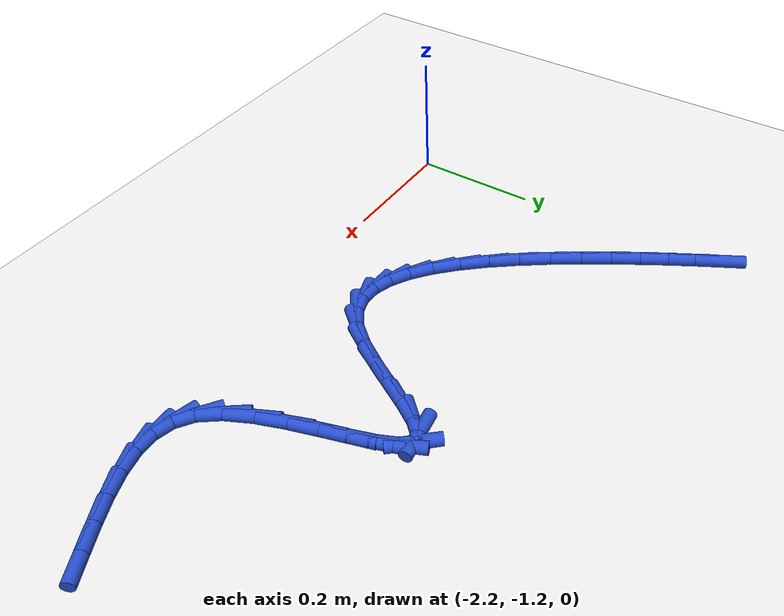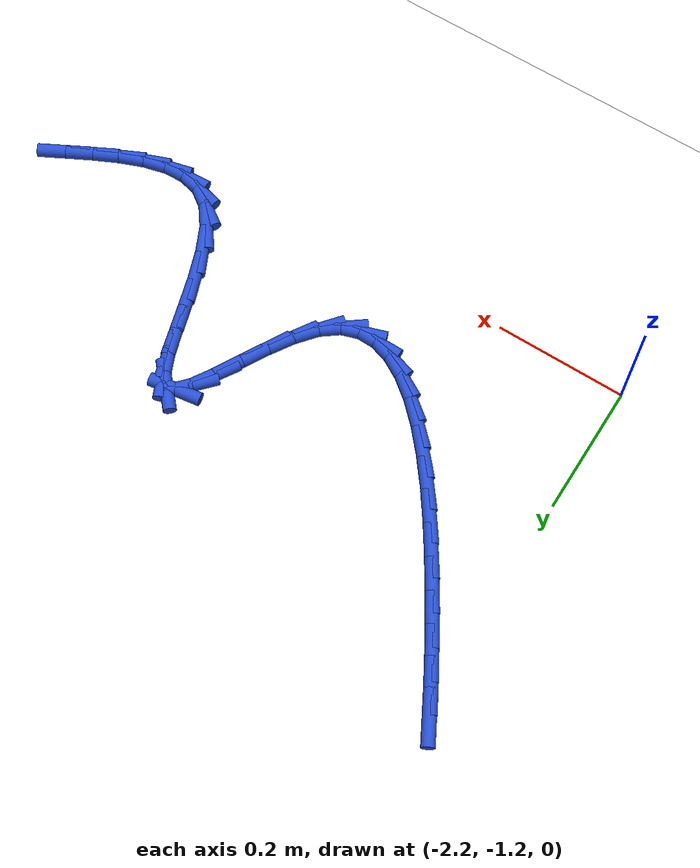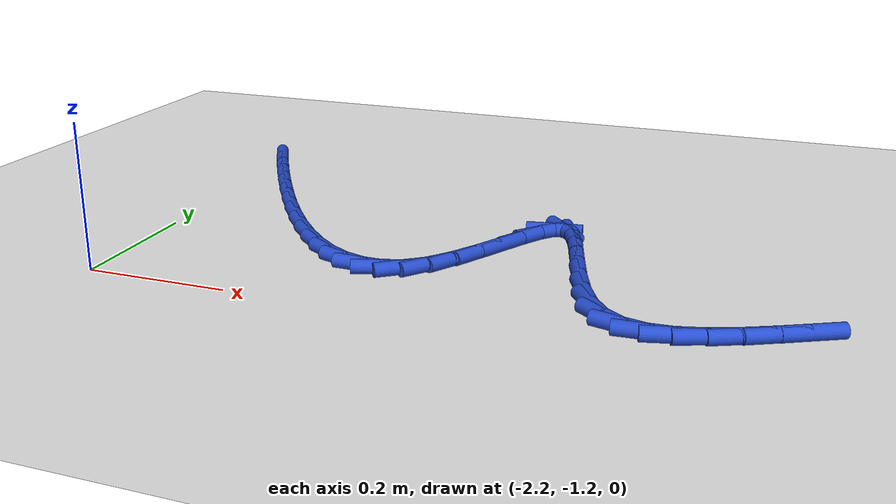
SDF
<sdf version="1.6">
 <world name="default">
  <model name="ground_plane">
   <static>1</static>
   <link name="link">
    <collision name="collision">
     <geometry><plane><normal>0 0 1</normal><size>100 100</size></plane></geometry>
     <surface><friction><ode><mu>100</mu><mu2>50</mu2></ode></friction></surface>
    </collision>
    <visual name="visual">
     <cast_shadows>0</cast_shadows>
     <geometry><plane><normal>0 0 1</normal><size>100 100</size></plane></geometry>
     <material>
      <script><uri>file://media/materials/scripts/gazebo.material</uri><name>Gazebo/WhiteGlow</name></script>
     </material>
    </visual>
   </link>
  </model>
  <model name="line">
   <link name="link_132">
    <pose>-2.2083821857039845 -0.6507809089555208 0.01 0 1.57 -1.0784235367434039</pose>
    <collision name="collision">
     <geometry><cylinder><radius>0.01</radius><length>0.08</length></cylinder></geometry>
    </collision>
    <visual name="visual">
     <material>
      <script><name>Gazebo/Blue</name><uri>file://media/materials/scripts/gazebo.material</uri></script>
     </material>
     <geometry><cylinder><radius>0.01</radius><length>0.08</length></cylinder></geometry>
    </visual>
   </link>
   <link name="link_133">
    <pose>-2.188243421637214 -0.6883224213920238 0.01 0 1.57 -1.0588629633523787</pose>
    <collision name="collision">
     <geometry><cylinder><radius>0.01</radius><length>0.08</length></cylinder></geometry>
    </collision>
    <visual name="visual">
     <material>
      <script><name>Gazebo/Blue</name><uri>file://media/materials/scripts/gazebo.material</uri></script>
     </material>
     <geometry><cylinder><radius>0.01</radius><length>0.08</length></cylinder></geometry>
    </visual>
   </link>
   <link name="link_134">
    <pose>-2.1664905791968163 -0.727035452723084 0.01 0 1.57 -1.0426411095655685</pose>
    <collision name="collision">
     <geometry><cylinder><radius>0.01</radius><length>0.08</length></cylinder></geometry>
    </collision>
    <visual name="visual">
     <material>
      <script><name>Gazebo/Blue</name><uri>file://media/materials/scripts/gazebo.material</uri></script>
     </material>
     <geometry><cylinder><radius>0.01</radius><length>0.08</length></cylinder></geometry>
    </visual>
   </link>
   <link name="link_135">
    <pose>-2.1431545867104793 -0.7670325884152858 0.01 0 1.57 -1.0283293010243693</pose>
    <collision name="collision">
     <geometry><cylinder><radius>0.01</radius><length>0.08</length></cylinder></geometry>
    </collision>
    <visual name="visual">
     <material>
      <script><name>Gazebo/Blue</name><uri>file://media/materials/scripts/gazebo.material</uri></script>
     </material>
     <geometry><cylinder><radius>0.01</radius><length>0.08</length></cylinder></geometry>
    </visual>
   </link>
   <link name="link_136">
    <pose>-2.118292682535758 -0.8082774399139088 0.01 0 1.57 -1.0099959422853895</pose>
    <collision name="collision">
     <geometry><cylinder><radius>0.01</radius><length>0.08</length></cylinder></geometry>
    </collision>
    <visual name="visual">
     <material>
      <script><name>Gazebo/Blue</name><uri>file://media/materials/scripts/gazebo.material</uri></script>
     </material>
     <geometry><cylinder><radius>0.01</radius><length>0.08</length></cylinder></geometry>
    </visual>
   </link>
   <link name="link_137">
    <pose>-2.0920930250336616 -0.8499923166024631 0.01 0 1.57 -0.9851980526018391</pose>
    <collision name="collision">
     <geometry><cylinder><radius>0.01</radius><length>0.08</length></cylinder></geometry>
    </collision>
    <visual name="visual">
     <material>
      <script><name>Gazebo/Blue</name><uri>file://media/materials/scripts/gazebo.material</uri></script>
     </material>
     <geometry><cylinder><radius>0.01</radius><length>0.08</length></cylinder></geometry>
    </visual>
   </link>
   <link name="link_138">
    <pose>-2.0647844160361513 -0.8911693942865656 0.01 0 1.57 -0.9525443677212309</pose>
    <collision name="collision">
     <geometry><cylinder><radius>0.01</radius><length>0.08</length></cylinder></geometry>
    </collision>
    <visual name="visual">
     <material>
      <script><name>Gazebo/Blue</name><uri>file://media/materials/scripts/gazebo.material</uri></script>
     </material>
     <geometry><cylinder><radius>0.01</radius><length>0.08</length></cylinder></geometry>
    </visual>
   </link>
   <link name="link_139">
    <pose>-2.036595669974826 -0.9308007774294997 0.01 0 1.57 -0.9097231591242859</pose>
    <collision name="collision">
     <geometry><cylinder><radius>0.01</radius><length>0.08</length></cylinder></geometry>
    </collision>
    <visual name="visual">
     <material>
      <script><name>Gazebo/Blue</name><uri>file://media/materials/scripts/gazebo.material</uri></script>
     </material>
     <geometry><cylinder><radius>0.01</radius><length>0.08</length></cylinder></geometry>
    </visual>
   </link>
   <link name="link_140">
    <pose>-2.007755601281283 -0.9678785704945505 0.01 0 1.57 -0.8530521009624203</pose>
    <collision name="collision">
     <geometry><cylinder><radius>0.01</radius><length>0.08</length></cylinder></geometry>
    </collision>
    <visual name="visual">
     <material>
      <script><name>Gazebo/Blue</name><uri>file://media/materials/scripts/gazebo.material</uri></script>
     </material>
     <geometry><cylinder><radius>0.01</radius><length>0.08</length></cylinder></geometry>
    </visual>
   </link>
   <link name="link_141">
    <pose>-1.9784930243871244 -1.0013948779449997 0.01 0 1.57 -0.7766772118444388</pose>
    <collision name="collision">
     <geometry><cylinder><radius>0.01</radius><length>0.08</length></cylinder></geometry>
    </collision>
    <visual name="visual">
     <material>
      <script><name>Gazebo/Blue</name><uri>file://media/materials/scripts/gazebo.material</uri></script>
     </material>
     <geometry><cylinder><radius>0.01</radius><length>0.08</length></cylinder></geometry>
    </visual>
   </link>
   <link name="link_142">
    <pose>-1.949036753723949 -1.0303418042441326 0.01 0 1.57 -0.6712646205791004</pose>
    <collision name="collision">
     <geometry><cylinder><radius>0.01</radius><length>0.08</length></cylinder></geometry>
    </collision>
    <visual name="visual">
     <material>
      <script><name>Gazebo/Blue</name><uri>file://media/materials/scripts/gazebo.material</uri></script>
     </material>
     <geometry><cylinder><radius>0.01</radius><length>0.08</length></cylinder></geometry>
    </visual>
   </link>
   <link name="link_143">
    <pose>-1.9196156037233552 -1.053711453855232 0.01 0 1.57 -0.5223258967838594</pose>
    <collision name="collision">
     <geometry><cylinder><radius>0.01</radius><length>0.08</length></cylinder></geometry>
    </collision>
    <visual name="visual">
     <material>
      <script><name>Gazebo/Blue</name><uri>file://media/materials/scripts/gazebo.material</uri></script>
     </material>
     <geometry><cylinder><radius>0.01</radius><length>0.08</length></cylinder></geometry>
    </visual>
   </link>
   <link name="link_144">
    <pose>-1.8904583888169422 -1.0704959312415825 0.01 0 1.57 -0.3102971630249139</pose>
    <collision name="collision">
     <geometry><cylinder><radius>0.01</radius><length>0.08</length></cylinder></geometry>
    </collision>
    <visual name="visual">
     <material>
      <script><name>Gazebo/Blue</name><uri>file://media/materials/scripts/gazebo.material</uri></script>
     </material>
     <geometry><cylinder><radius>0.01</radius><length>0.08</length></cylinder></geometry>
    </visual>
   </link>
   <link name="link_145">
    <pose>-1.8617939234363103 -1.0796873408664673 0.01 0 1.57 -0.02112731473123825</pose>
    <collision name="collision">
     <geometry><cylinder><radius>0.01</radius><length>0.08</length></cylinder></geometry>
    </collision>
    <visual name="visual">
     <material>
      <script><name>Gazebo/Blue</name><uri>file://media/materials/scripts/gazebo.material</uri></script>
     </material>
     <geometry><cylinder><radius>0.01</radius><length>0.08</length></cylinder></geometry>
    </visual>
   </link>
   <link name="link_146">
    <pose>-1.833851022013058 -1.0802777871931701 0.01 0 1.57 0.32244741306785263</pose>
    <collision name="collision">
     <geometry><cylinder><radius>0.01</radius><length>0.08</length></cylinder></geometry>
    </collision>
    <visual name="visual">
     <material>
      <script><name>Gazebo/Blue</name><uri>file://media/materials/scripts/gazebo.material</uri></script>
     </material>
     <geometry><cylinder><radius>0.01</radius><length>0.08</length></cylinder></geometry>
    </visual>
   </link>
   <link name="link_147">
    <pose>-1.806858498978786 -1.0712593746849757 0.01 0 1.57 0.6502671779613481</pose>
    <collision name="collision">
     <geometry><cylinder><radius>0.01</radius><length>0.08</length></cylinder></geometry>
    </collision>
    <visual name="visual">
     <material>
      <script><name>Gazebo/Blue</name><uri>file://media/materials/scripts/gazebo.material</uri></script>
     </material>
     <geometry><cylinder><radius>0.01</radius><length>0.08</length></cylinder></geometry>
    </visual>
   </link>
   <link name="link_148">
    <pose>-1.781045146284898 -1.0516250657297117 0.01 0 1.57 0.8879829678417556</pose>
    <collision name="collision">
     <geometry><cylinder><radius>0.01</radius><length>0.08</length></cylinder></geometry>
    </collision>
    <visual name="visual">
     <material>
      <script><name>Gazebo/Blue</name><uri>file://media/materials/scripts/gazebo.material</uri></script>
     </material>
     <geometry><cylinder><radius>0.01</radius><length>0.08</length></cylinder></geometry>
    </visual>
   </link>
   <link name="link_149">
    <pose>-1.7566080165168314 -1.0215791104257306 0.01 0 1.57 1.0109274953070722</pose>
    <collision name="collision">
     <geometry><cylinder><radius>0.01</radius><length>0.08</length></cylinder></geometry>
    </collision>
    <visual name="visual">
     <material>
      <script><name>Gazebo/Blue</name><uri>file://media/materials/scripts/gazebo.material</uri></script>
     </material>
     <geometry><cylinder><radius>0.01</radius><length>0.08</length></cylinder></geometry>
    </visual>
   </link>
   <link name="link_150">
    <pose>-1.7336492327659114 -0.984948607849542 0.01 0 1.57 1.065902204256659</pose>
    <collision name="collision">
     <geometry><cylinder><radius>0.01</radius><length>0.08</length></cylinder></geometry>
    </collision>
    <visual name="visual">
     <material>
      <script><name>Gazebo/Blue</name><uri>file://media/materials/scripts/gazebo.material</uri></script>
     </material>
     <geometry><cylinder><radius>0.01</radius><length>0.08</length></cylinder></geometry>
    </visual>
   </link>
   <link name="link_151">
    <pose>-1.7122532468280887 -0.9462350569045186 0.01 0 1.57 1.0724819846524838</pose>
    <collision name="collision">
     <geometry><cylinder><radius>0.01</radius><length>0.08</length></cylinder></geometry>
    </collision>
    <visual name="visual">
     <material>
      <script><name>Gazebo/Blue</name><uri>file://media/materials/scripts/gazebo.material</uri></script>
     </material>
     <geometry><cylinder><radius>0.01</radius><length>0.08</length></cylinder></geometry>
    </visual>
   </link>
   <link name="link_152">
    <pose>-1.6925045104993144 -0.9099399564940329 0.01 0 1.57 1.0206237274804286</pose>
    <collision name="collision">
     <geometry><cylinder><radius>0.01</radius><length>0.08</length></cylinder></geometry>
    </collision>
    <visual name="visual">
     <material>
      <script><name>Gazebo/Blue</name><uri>file://media/materials/scripts/gazebo.material</uri></script>
     </material>
     <geometry><cylinder><radius>0.01</radius><length>0.08</length></cylinder></geometry>
    </visual>
   </link>
   <link name="link_153">
    <pose>-1.6744874755755395 -0.880564805521457 0.01 0 1.57 0.836673402991903</pose>
    <collision name="collision">
     <geometry><cylinder><radius>0.01</radius><length>0.08</length></cylinder></geometry>
    </collision>
    <visual name="visual">
     <material>
      <script><name>Gazebo/Blue</name><uri>file://media/materials/scripts/gazebo.material</uri></script>
     </material>
     <geometry><cylinder><radius>0.01</radius><length>0.08</length></cylinder></geometry>
    </visual>
   </link>
   <link name="link_154">
    <pose>-1.6582865938527158 -0.8626111028901648 0.01 0 1.57 0.15090824317683074</pose>
    <collision name="collision">
     <geometry><cylinder><radius>0.01</radius><length>0.08</length></cylinder></geometry>
    </collision>
    <visual name="visual">
     <material>
      <script><name>Gazebo/Blue</name><uri>file://media/materials/scripts/gazebo.material</uri></script>
     </material>
     <geometry><cylinder><radius>0.01</radius><length>0.08</length></cylinder></geometry>
    </visual>
   </link>
   <link name="link_155">
    <pose>-1.64397196717432 -0.8604343587037366 0.01 0 1.57 -0.8396976832279517</pose>
    <collision name="collision">
     <geometry><cylinder><radius>0.01</radius><length>0.08</length></cylinder></geometry>
    </collision>
    <visual name="visual">
     <material>
      <script><name>Gazebo/Blue</name><uri>file://media/materials/scripts/gazebo.material</uri></script>
     </material>
     <geometry><cylinder><radius>0.01</radius><length>0.08</length></cylinder></geometry>
    </visual>
   </link>
   <link name="link_156">
    <pose>-1.6312436880283598 -0.8746258042770919 0.01 0 1.57 -1.1596479442308116</pose>
    <collision name="collision">
     <geometry><cylinder><radius>0.01</radius><length>0.08</length></cylinder></geometry>
    </collision>
    <visual name="visual">
     <material>
      <script><name>Gazebo/Blue</name><uri>file://media/materials/scripts/gazebo.material</uri></script>
     </material>
     <geometry><cylinder><radius>0.01</radius><length>0.08</length></cylinder></geometry>
    </visual>
   </link>
   <link name="link_157">
    <pose>-1.619408175710137 -0.9017716488167837 0.01 0 1.57 -1.261643024260623</pose>
    <collision name="collision">
     <geometry><cylinder><radius>0.01</radius><length>0.08</length></cylinder></geometry>
    </collision>
    <visual name="visual">
     <material>
      <script><name>Gazebo/Blue</name><uri>file://media/materials/scripts/gazebo.material</uri></script>
     </material>
     <geometry><cylinder><radius>0.01</radius><length>0.08</length></cylinder></geometry>
    </visual>
   </link>
   <link name="link_158">
    <pose>-1.6077527610925464 -0.938263906051551 0.01 0 1.57 -1.2898261751604347</pose>
    <collision name="collision">
     <geometry><cylinder><radius>0.01</radius><length>0.08</length></cylinder></geometry>
    </collision>
    <visual name="visual">
     <material>
      <script><name>Gazebo/Blue</name><uri>file://media/materials/scripts/gazebo.material</uri></script>
     </material>
     <geometry><cylinder><radius>0.01</radius><length>0.08</length></cylinder></geometry>
    </visual>
   </link>
   <link name="link_159">
    <pose>-1.5955647750484832 -0.9804945897101347 0.01 0 1.57 -1.276758702408142</pose>
    <collision name="collision">
     <geometry><cylinder><radius>0.01</radius><length>0.08</length></cylinder></geometry>
    </collision>
    <visual name="visual">
     <material>
      <script><name>Gazebo/Blue</name><uri>file://media/materials/scripts/gazebo.material</uri></script>
     </material>
     <geometry><cylinder><radius>0.01</radius><length>0.08</length></cylinder></geometry>
    </visual>
   </link>
   <link name="link_160">
    <pose>-1.5821315484508414 -1.0248557135212752 0.01 0 1.57 -1.2262103336336498</pose>
    <collision name="collision">
     <geometry><cylinder><radius>0.01</radius><length>0.08</length></cylinder></geometry>
    </collision>
    <visual name="visual">
     <material>
      <script><name>Gazebo/Blue</name><uri>file://media/materials/scripts/gazebo.material</uri></script>
     </material>
     <geometry><cylinder><radius>0.01</radius><length>0.08</length></cylinder></geometry>
    </visual>
   </link>
   <link name="link_161">
    <pose>-1.566740412172516 -1.0677392912137131 0.01 0 1.57 -1.125026957564897</pose>
    <collision name="collision">
     <geometry><cylinder><radius>0.01</radius><length>0.08</length></cylinder></geometry>
    </collision>
    <visual name="visual">
     <material>
      <script><name>Gazebo/Blue</name><uri>file://media/materials/scripts/gazebo.material</uri></script>
     </material>
     <geometry><cylinder><radius>0.01</radius><length>0.08</length></cylinder></geometry>
    </visual>
   </link>
   <link name="link_162">
    <pose>-1.5486786970864008 -1.1055373365161894 0.01 0 1.57 -0.9357810315941666</pose>
    <collision name="collision">
     <geometry><cylinder><radius>0.01</radius><length>0.08</length></cylinder></geometry>
    </collision>
    <visual name="visual">
     <material>
      <script><name>Gazebo/Blue</name><uri>file://media/materials/scripts/gazebo.material</uri></script>
     </material>
     <geometry><cylinder><radius>0.01</radius><length>0.08</length></cylinder></geometry>
    </visual>
   </link>
   <link name="link_163">
    <pose>-1.5272337428376808 -1.134641900207566 0.01 0 1.57 -0.6122434670114492</pose>
    <collision name="collision">
     <geometry><cylinder><radius>0.01</radius><length>0.08</length></cylinder></geometry>
    </collision>
    <visual name="visual">
     <material>
      <script><name>Gazebo/Blue</name><uri>file://media/materials/scripts/gazebo.material</uri></script>
     </material>
     <geometry><cylinder><radius>0.01</radius><length>0.08</length></cylinder></geometry>
    </visual>
   </link>
   <link name="link_164">
    <pose>-1.5019229583227918 -1.1524167399499805 0.01 0 1.57 -0.24833996881711565</pose>
    <collision name="collision">
     <geometry><cylinder><radius>0.01</radius><length>0.08</length></cylinder></geometry>
    </collision>
    <visual name="visual">
     <material>
      <script><name>Gazebo/Blue</name><uri>file://media/materials/scripts/gazebo.material</uri></script>
     </material>
     <geometry><cylinder><radius>0.01</radius><length>0.08</length></cylinder></geometry>
    </visual>
   </link>
   <link name="link_165">
    <pose>-1.4730928447874032 -1.159727318819194 0.01 0 1.57 0.04710151847328167</pose>
    <collision name="collision">
     <geometry><cylinder><radius>0.01</radius><length>0.08</length></cylinder></geometry>
    </collision>
    <visual name="visual">
     <material>
      <script><name>Gazebo/Blue</name><uri>file://media/materials/scripts/gazebo.material</uri></script>
     </material>
     <geometry><cylinder><radius>0.01</radius><length>0.08</length></cylinder></geometry>
    </visual>
   </link>
   <link name="link_166">
    <pose>-1.4412765990119247 -1.1582276161103127 0.01 0 1.57 0.24741351788643498</pose>
    <collision name="collision">
     <geometry><cylinder><radius>0.01</radius><length>0.08</length></cylinder></geometry>
    </collision>
    <visual name="visual">
     <material>
      <script><name>Gazebo/Blue</name><uri>file://media/materials/scripts/gazebo.material</uri></script>
     </material>
     <geometry><cylinder><radius>0.01</radius><length>0.08</length></cylinder></geometry>
    </visual>
   </link>
   <link name="link_167">
    <pose>-1.4070074177767689 -1.1495716111184426 0.01 0 1.57 0.3729265241290254</pose>
    <collision name="collision">
     <geometry><cylinder><radius>0.01</radius><length>0.08</length></cylinder></geometry>
    </collision>
    <visual name="visual">
     <material>
      <script><name>Gazebo/Blue</name><uri>file://media/materials/scripts/gazebo.material</uri></script>
     </material>
     <geometry><cylinder><radius>0.01</radius><length>0.08</length></cylinder></geometry>
    </visual>
   </link>
   <link name="link_168">
    <pose>-1.370818497862345 -1.135413283138691 0.01 0 1.57 0.4468806231914281</pose>
    <collision name="collision">
     <geometry><cylinder><radius>0.01</radius><length>0.08</length></cylinder></geometry>
    </collision>
    <visual name="visual">
     <material>
      <script><name>Gazebo/Blue</name><uri>file://media/materials/scripts/gazebo.material</uri></script>
     </material>
     <geometry><cylinder><radius>0.01</radius><length>0.08</length></cylinder></geometry>
    </visual>
   </link>
   <link name="link_169">
    <pose>-1.333243036049064 -1.117406611466163 0.01 0 1.57 0.48397545617441595</pose>
    <collision name="collision">
     <geometry><cylinder><radius>0.01</radius><length>0.08</length></cylinder></geometry>
    </collision>
    <visual name="visual">
     <material>
      <script><name>Gazebo/Blue</name><uri>file://media/materials/scripts/gazebo.material</uri></script>
     </material>
     <geometry><cylinder><radius>0.01</radius><length>0.08</length></cylinder></geometry>
    </visual>
   </link>
   <link name="link_170">
    <pose>-1.2948142291173357 -1.097205575395965 0.01 0 1.57 0.4914692727669029</pose>
    <collision name="collision">
     <geometry><cylinder><radius>0.01</radius><length>0.08</length></cylinder></geometry>
    </collision>
    <visual name="visual">
     <material>
      <script><name>Gazebo/Blue</name><uri>file://media/materials/scripts/gazebo.material</uri></script>
     </material>
     <geometry><cylinder><radius>0.01</radius><length>0.08</length></cylinder></geometry>
    </visual>
   </link>
  </model>
 </world>
</sdf>
